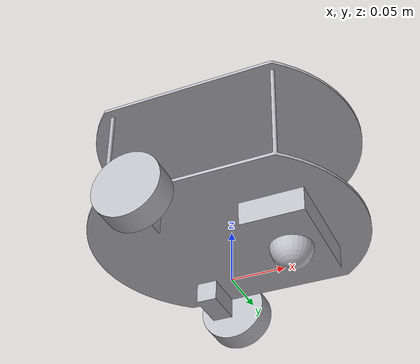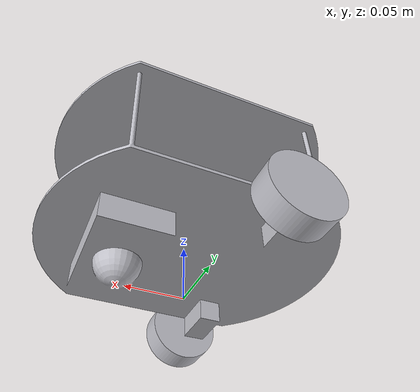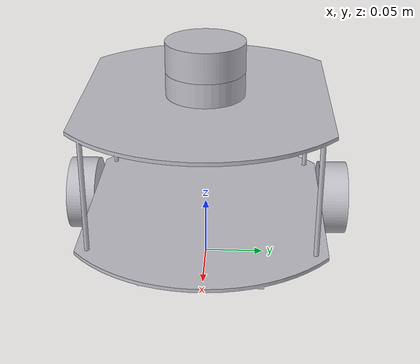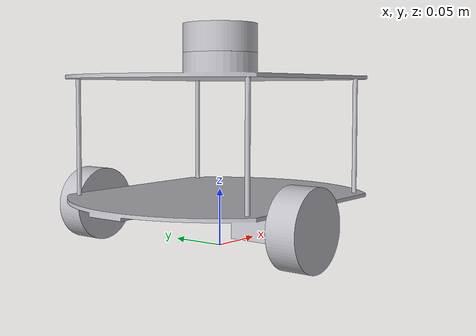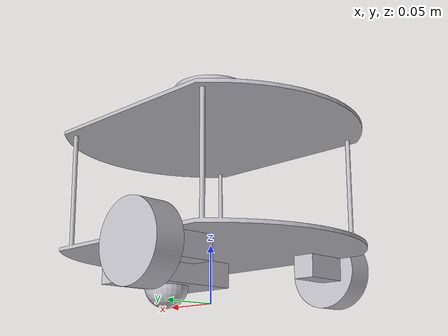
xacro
<?xml version="1.0" ?>
<robot name="myrobot" xmlns:xacro="http://www.ros.org/wiki/xacro">

<xacro:include filename="$(find myrobot_description)/urdf/materials.xacro" />
<xacro:include filename="$(find myrobot_description)/urdf/myrobot.trans" />
<xacro:include filename="$(find myrobot_description)/urdf/myrobot.gazebo" />
<link name="base_link">
  <inertial>
    <origin xyz="0.012011808477337915 9.168057903710827e-16 0.08081745703011022" rpy="0 0 0"/>
    <mass value="0.6365446631807843"/>
    <inertia ixx="0.003471" iyy="0.004291" izz="0.003702" ixy="-0.0" iyz="0.0" ixz="0.000459"/>
  </inertial>
  <visual>
    <origin xyz="0 0 0" rpy="0 0 0"/>
    <geometry>
      <mesh filename="package://myrobot_description/meshes/base_link.stl" scale="0.001 0.001 0.001"/>
    </geometry>
    <material name="silver"/>
  </visual>
  <collision>
    <origin xyz="0 0 0" rpy="0 0 0"/>
    <geometry>
      <mesh filename="package://myrobot_description/meshes/base_link.stl" scale="0.001 0.001 0.001"/>
    </geometry>
  </collision>
</link>

<link name="right_wheel_1">
  <inertial>
    <origin xyz="-9.163798694172831e-08 -0.01250000000000008 0.0" rpy="0 0 0"/>
    <mass value="0.07715064333823558"/>
    <inertia ixx="2.4e-05" iyy="4.1e-05" izz="2.4e-05" ixy="0.0" iyz="-0.0" ixz="0.0"/>
  </inertial>
  <visual>
    <origin xyz="0.042661 0.1 -0.033" rpy="0 0 0"/>
    <geometry>
      <mesh filename="package://myrobot_description/meshes/right_wheel_1.stl" scale="0.001 0.001 0.001"/>
    </geometry>
    <material name="silver"/>
  </visual>
  <collision>
    <origin xyz="0.042661 0.1 -0.033" rpy="0 0 0"/>
    <geometry>
      <mesh filename="package://myrobot_description/meshes/right_wheel_1.stl" scale="0.001 0.001 0.001"/>
    </geometry>
  </collision>
</link>

<link name="left_wheel_1">
  <inertial>
    <origin xyz="-9.163798633110565e-08 0.012500000000000122 0.0" rpy="0 0 0"/>
    <mass value="0.07715064333823558"/>
    <inertia ixx="2.4e-05" iyy="4.1e-05" izz="2.4e-05" ixy="-0.0" iyz="0.0" ixz="0.0"/>
  </inertial>
  <visual>
    <origin xyz="0.042661 -0.1 -0.033" rpy="0 0 0"/>
    <geometry>
      <mesh filename="package://myrobot_description/meshes/left_wheel_1.stl" scale="0.001 0.001 0.001"/>
    </geometry>
    <material name="silver"/>
  </visual>
  <collision>
    <origin xyz="0.042661 -0.1 -0.033" rpy="0 0 0"/>
    <geometry>
      <mesh filename="package://myrobot_description/meshes/left_wheel_1.stl" scale="0.001 0.001 0.001"/>
    </geometry>
  </collision>
</link>

<link name="lidar_1">
  <inertial>
    <origin xyz="4.730879869785494e-11 0.0 0.012500000000000039" rpy="0 0 0"/>
    <mass value="0.6512177959195155"/>
    <inertia ixx="0.000206" iyy="0.000206" izz="0.000344" ixy="0.0" iyz="-0.0" ixz="-0.0"/>
  </inertial>
  <visual>
    <origin xyz="-0.0 -0.0 -0.169" rpy="0 0 0"/>
    <geometry>
      <mesh filename="package://myrobot_description/meshes/lidar_1.stl" scale="0.001 0.001 0.001"/>
    </geometry>
    <material name="silver"/>
  </visual>
  <collision>
    <origin xyz="-0.0 -0.0 -0.169" rpy="0 0 0"/>
    <geometry>
      <mesh filename="package://myrobot_description/meshes/lidar_1.stl" scale="0.001 0.001 0.001"/>
    </geometry>
  </collision>
</link>

<joint name="right_joint" type="continuous">
  <origin xyz="-0.042661 -0.1 0.033" rpy="0 0 0"/>
  <parent link="base_link"/>
  <child link="right_wheel_1"/>
  <axis xyz="-0.0 1.0 0.0"/>
</joint>

<joint name="left_joint" type="continuous">
  <origin xyz="-0.042661 0.1 0.033" rpy="0 0 0"/>
  <parent link="base_link"/>
  <child link="left_wheel_1"/>
  <axis xyz="0.0 1.0 0.0"/>
</joint>

<joint name="lidar_joint" type="fixed">
  <origin xyz="0.0 0.0 0.169" rpy="0 0 0"/>
  <parent link="base_link"/>
  <child link="lidar_1"/>
</joint>

</robot>

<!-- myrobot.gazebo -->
<robot name="myrobot" xmlns:xacro="http://www.ros.org/wiki/xacro" >

<xacro:property name="body_color" value="Gazebo/Silver" />

<gazebo>
  <plugin name="control" filename="libgazebo_ros_control.so"/>
</gazebo>
<gazebo reference="base_link">
  <material>${body_color}</material>
  <mu1>0.2</mu1>
  <mu2>0.2</mu2>
  <selfCollide>true</selfCollide>
  <gravity>true</gravity>
</gazebo>

<gazebo reference="right_wheel_1">
  <material>${body_color}</material>
  <mu1>1500</mu1>
  <mu2>1500</mu2>
  <selfCollide>true</selfCollide>
</gazebo>

<gazebo reference="left_wheel_1">
  <material>${body_color}</material>
  <mu1>1500</mu1>
  <mu2>1500</mu2>
  <selfCollide>true</selfCollide>
</gazebo>

<gazebo reference="lidar_1">
  <material>${body_color}</material>
  <mu1>0.2</mu1>
  <mu2>0.2</mu2>
  <selfCollide>true</selfCollide>
</gazebo>
<gazebo>
  <plugin name="differential_drive_controller" filename="libgazebo_ros_diff_drive.so">

    <!-- Plugin update rate in Hz -->
    <updateRate>100</updateRate>

    <!-- Name of left joint, defaults to `left_joint` -->
    <leftJoint>left_joint</leftJoint>

    <!-- Name of right joint, defaults to `right_joint` -->
    <rightJoint>right_joint</rightJoint>

    <!-- The distance from the center of one wheel to the other, in meters, defaults to 0.34 m -->
    <wheelSeparation>0.2</wheelSeparation>

    <!-- Diameter of the wheels, in meters, defaults to 0.15 m -->
    <wheelDiameter>0.065</wheelDiameter>

    <!-- Wheel acceleration, in rad/s^2, defaults to 0.0 rad/s^2 -->
    <wheelAcceleration>1.0</wheelAcceleration>

    <!-- Maximum torque which the wheels can produce, in Nm, defaults to 5 Nm -->
    <wheelTorque>50</wheelTorque>

    <!-- Topic to receive geometry_msgs/Twist message commands, defaults to `cmd_vel` -->
    <commandTopic>cmd_vel</commandTopic>

    <!-- Topic to publish nav_msgs/Odometry messages, defaults to `odom` -->
    <odometryTopic>odom</odometryTopic>

    <!-- Odometry frame, defaults to `odom` -->
    <odometryFrame>odom</odometryFrame>

    <!-- Robot frame to calculate odometry from, defaults to `base_footprint` -->
    <robotBaseFrame>base_link</robotBaseFrame>

    <!-- Odometry source, 0 for ENCODER, 1 for WORLD, defaults to WORLD -->
    <odometrySource>1</odometrySource>

    <!-- Set to true to publish transforms for the wheel links, defaults to false -->
    <publishWheelTF>false</publishWheelTF>

    <!-- Set to true to publish transforms for the odometry, defaults to true -->
    <publishOdom>true</publishOdom>

    <!-- Set to true to publish sensor_msgs/JointState on /joint_states for the wheel joints, defaults to false -->
    <publishWheelJointState>false</publishWheelJointState>

    <!-- Set to true to swap right and left wheels, defaults to true -->
    <legacyMode>false</legacyMode>
  </plugin>
</gazebo>
 <!-- hokuyo -->
  <gazebo reference="lidar_1">
    <sensor type="ray" name="head_hokuyo_sensor">
      <pose>0 0 0 0 0 0</pose>
      <visualize>true</visualize>
      <update_rate>40</update_rate>
      <ray>
        <scan>
          <horizontal>
            <samples>720</samples>
            <resolution>0.85</resolution>
            <min_angle>-1.570796</min_angle>
            <max_angle>1.570796</max_angle>
          </horizontal>
        </scan>
        <range>
          <min>0.10</min>
          <max>30.0</max>
          <resolution>0.01</resolution>
        </range>
        <noise>
          <type>gaussian</type>
          <mean>0.0</mean>
          <stddev>0.01</stddev>
        </noise>
      </ray>
      <plugin name="gazebo_ros_head_hokuyo_controller" filename="libgazebo_ros_laser.so">
        <topicName>/scan</topicName>
        <frameName>lidar_1</frameName>
      </plugin>
    </sensor>
  </gazebo>
</robot>
